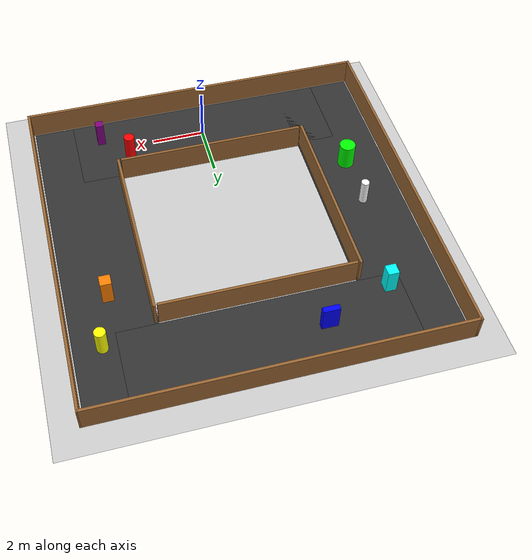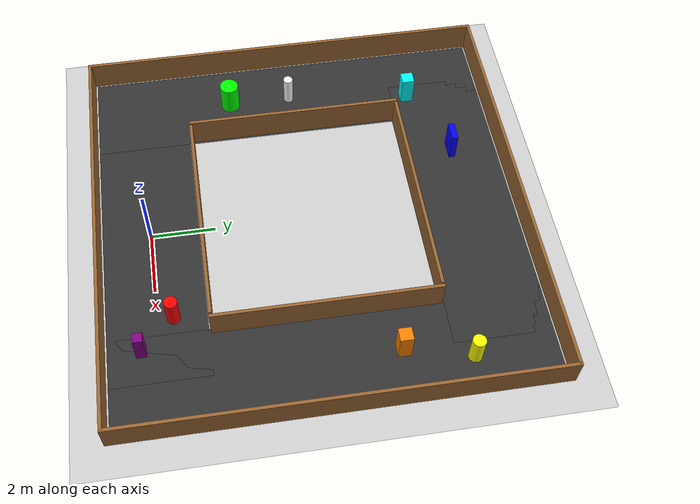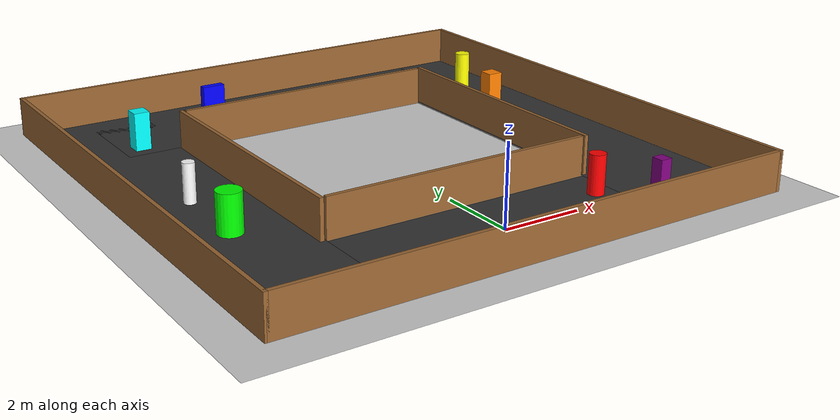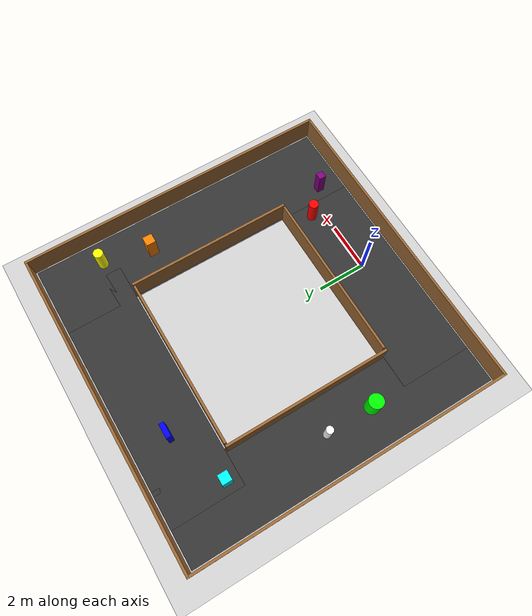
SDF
<?xml version="1.0" ?>
<sdf version="1.8">
  <world name="road_with_obstacles">
    <physics name="1ms" type="ignored">
      <max_step_size>0.001</max_step_size>
      <real_time_factor>1.0</real_time_factor>
    </physics>
    <plugin
      filename="gz-sim-physics-system"
      name="gz::sim::systems::Physics">
    </plugin>
    <plugin
      filename="gz-sim-user-commands-system"
      name="gz::sim::systems::UserCommands">
    </plugin>
    <plugin
      filename="gz-sim-scene-broadcaster-system"
      name="gz::sim::systems::SceneBroadcaster">
    </plugin>
    <plugin
      filename="gz-sim-sensors-system"
      name="gz::sim::systems::Sensors">
      <render_engine>ogre2</render_engine>
    </plugin>

    <light type="directional" name="sun">
      <cast_shadows>true</cast_shadows>
      <pose>0 0 10 0 0 0</pose>
      <diffuse>0.8 0.8 0.8 1</diffuse>
      <specular>0.2 0.2 0.2 1</specular>
      <attenuation>
        <range>1000</range>
        <constant>0.9</constant>
        <linear>0.01</linear>
        <quadratic>0.001</quadratic>
      </attenuation>
      <direction>-0.5 0.1 -0.9</direction>
    </light>

    <model name="ground_plane">
      <static>true</static>
      <link name="link">
        <collision name="collision">
          <geometry>
            <plane>
              <normal>0 0 1</normal>
              <size>100 100</size>
            </plane>
          </geometry>
        </collision>
        <visual name="visual">
          <geometry>
            <plane>
              <normal>0 0 1</normal>
              <size>100 100</size>
            </plane>
          </geometry>
          <material>
            <ambient>0.8 0.8 0.8 1</ambient>
            <diffuse>0.8 0.8 0.8 1</diffuse>
            <specular>0.8 0.8 0.8 1</specular>
          </material>
        </visual>
      </link>
    </model>

    <!-- ROADS (Width 3m) -->
    <!-- Bottom Straight Segment -->
    <model name="road_bottom">
      <static>true</static>
      <!-- Center (0,0), Length 10 -->
      <pose>0 0 0.01 0 0 0</pose>
      <link name="link">
        <visual name="visual">
          <geometry>
            <box>
              <size>10 3 0.02</size>
            </box>
          </geometry>
          <material>
            <ambient>0.2 0.2 0.2 1</ambient>
            <diffuse>0.2 0.2 0.2 1</diffuse>
          </material>
        </visual>
        <collision name="collision">
          <geometry>
            <box>
              <size>10 3 0.02</size>
            </box>
          </geometry>
        </collision>
      </link>
    </model>

    <!-- Top Straight Segment -->
    <model name="road_top">
      <static>true</static>
       <!-- Center (0,10), Length 10 -->
      <pose>0 10 0.01 0 0 0</pose>
      <link name="link">
        <visual name="visual">
          <geometry>
            <box>
              <size>10 3 0.02</size>
            </box>
          </geometry>
          <material>
            <ambient>0.2 0.2 0.2 1</ambient>
            <diffuse>0.2 0.2 0.2 1</diffuse>
          </material>
        </visual>
        <collision name="collision">
          <geometry>
            <box>
              <size>10 3 0.02</size>
            </box>
          </geometry>
        </collision>
      </link>
    </model>

    <!-- Left Straight Segment -->
    <model name="road_left">
      <static>true</static>
      <!-- Center (-5, 5), Length 13 (to overlap 3m width + margin) -->
      <pose>-5 5 0.01 0 0 0</pose>
      <link name="link">
        <visual name="visual">
          <geometry>
            <box>
              <size>3 13 0.02</size>
            </box>
          </geometry>
          <material>
            <ambient>0.2 0.2 0.2 1</ambient>
            <diffuse>0.2 0.2 0.2 1</diffuse>
          </material>
        </visual>
        <collision name="collision">
          <geometry>
            <box>
              <size>3 13 0.02</size>
            </box>
          </geometry>
        </collision>
      </link>
    </model>

    <!-- Right Straight Segment -->
    <model name="road_right">
      <static>true</static>
       <!-- Center (5, 5), Length 13 -->
      <pose>5 5 0.01 0 0 0</pose>
      <link name="link">
        <visual name="visual">
          <geometry>
            <box>
              <size>3 13 0.02</size>
            </box>
          </geometry>
          <material>
            <ambient>0.2 0.2 0.2 1</ambient>
            <diffuse>0.2 0.2 0.2 1</diffuse>
          </material>
        </visual>
        <collision name="collision">
          <geometry>
            <box>
              <size>3 13 0.02</size>
            </box>
          </geometry>
        </collision>
      </link>
    </model>

    <!-- FENCES -->
    <!-- Outer Fence Bottom -->
    <model name="fence_outer_bottom">
      <static>true</static>
      <pose>0 -1.6 0.5 0 0 0</pose>
      <link name="link">
        <visual name="visual">
          <geometry>
            <box>
              <size>13.2 0.1 1</size>
            </box>
          </geometry>
          <material>
            <ambient>0.6 0.4 0.2 1</ambient>
            <diffuse>0.6 0.4 0.2 1</diffuse>
          </material>
        </visual>
        <collision name="collision">
          <geometry>
            <box>
              <size>13.2 0.1 1</size>
            </box>
          </geometry>
        </collision>
      </link>
    </model>

    <!-- Outer Fence Top -->
    <model name="fence_outer_top">
      <static>true</static>
      <pose>0 11.6 0.5 0 0 0</pose>
      <link name="link">
        <visual name="visual">
          <geometry>
            <box>
              <size>13.2 0.1 1</size>
            </box>
          </geometry>
          <material>
            <ambient>0.6 0.4 0.2 1</ambient>
            <diffuse>0.6 0.4 0.2 1</diffuse>
          </material>
        </visual>
        <collision name="collision">
          <geometry>
            <box>
              <size>13.2 0.1 1</size>
            </box>
          </geometry>
        </collision>
      </link>
    </model>

    <!-- Outer Fence Left -->
    <model name="fence_outer_left">
      <static>true</static>
      <pose>-6.6 5 0.5 0 0 0</pose>
      <link name="link">
        <visual name="visual">
          <geometry>
            <box>
              <size>0.1 13.3 1</size>
            </box>
          </geometry>
          <material>
            <ambient>0.6 0.4 0.2 1</ambient>
            <diffuse>0.6 0.4 0.2 1</diffuse>
          </material>
        </visual>
        <collision name="collision">
          <geometry>
            <box>
              <size>0.1 13.3 1</size>
            </box>
          </geometry>
        </collision>
      </link>
    </model>

    <!-- Outer Fence Right -->
    <model name="fence_outer_right">
      <static>true</static>
      <pose>6.6 5 0.5 0 0 0</pose>
      <link name="link">
        <visual name="visual">
          <geometry>
            <box>
              <size>0.1 13.3 1</size>
            </box>
          </geometry>
          <material>
            <ambient>0.6 0.4 0.2 1</ambient>
            <diffuse>0.6 0.4 0.2 1</diffuse>
          </material>
        </visual>
        <collision name="collision">
          <geometry>
            <box>
              <size>0.1 13.3 1</size>
            </box>
          </geometry>
        </collision>
      </link>
    </model>

    <!-- Inner Fence Bottom -->
    <model name="fence_inner_bottom">
      <static>true</static>
      <pose>0 1.6 0.5 0 0 0</pose>
      <link name="link">
        <visual name="visual">
          <geometry>
            <box>
              <size>7 0.1 1</size>
            </box>
          </geometry>
          <material>
            <ambient>0.6 0.4 0.2 1</ambient>
            <diffuse>0.6 0.4 0.2 1</diffuse>
          </material>
        </visual>
        <collision name="collision">
          <geometry>
            <box>
              <size>7 0.1 1</size>
            </box>
          </geometry>
        </collision>
      </link>
    </model>

    <!-- Inner Fence Top -->
    <model name="fence_inner_top">
      <static>true</static>
      <pose>0 8.4 0.5 0 0 0</pose>
      <link name="link">
        <visual name="visual">
          <geometry>
            <box>
              <size>7 0.1 1</size>
            </box>
          </geometry>
          <material>
            <ambient>0.6 0.4 0.2 1</ambient>
            <diffuse>0.6 0.4 0.2 1</diffuse>
          </material>
        </visual>
        <collision name="collision">
          <geometry>
            <box>
              <size>7 0.1 1</size>
            </box>
          </geometry>
        </collision>
      </link>
    </model>

    <!-- Inner Fence Left -->
    <model name="fence_inner_left">
      <static>true</static>
      <pose>-3.6 5 0.5 0 0 0</pose>
      <link name="link">
        <visual name="visual">
          <geometry>
            <box>
              <size>0.1 6.9 1</size>
            </box>
          </geometry>
          <material>
            <ambient>0.6 0.4 0.2 1</ambient>
            <diffuse>0.6 0.4 0.2 1</diffuse>
          </material>
        </visual>
        <collision name="collision">
          <geometry>
            <box>
              <size>0.1 6.9 1</size>
            </box>
          </geometry>
        </collision>
      </link>
    </model>

    <!-- Inner Fence Right -->
    <model name="fence_inner_right">
      <static>true</static>
      <pose>3.6 5 0.5 0 0 0</pose>
      <link name="link">
        <visual name="visual">
          <geometry>
            <box>
              <size>0.1 6.9 1</size>
            </box>
          </geometry>
          <material>
            <ambient>0.6 0.4 0.2 1</ambient>
            <diffuse>0.6 0.4 0.2 1</diffuse>
          </material>
        </visual>
        <collision name="collision">
          <geometry>
            <box>
              <size>0.1 6.9 1</size>
            </box>
          </geometry>
        </collision>
      </link>
    </model>

     <!-- Obstacles (Scaled Positions) -->
    <model name="obstacle_1">
      <static>true</static>
      <pose>3 0.5 0.5 0 0 0</pose>
      <link name="link">
        <visual name="visual">
          <geometry>
            <cylinder>
              <radius>0.2</radius>
              <length>1</length>
            </cylinder>
          </geometry>
          <material>
            <ambient>1 0 0 1</ambient>
            <diffuse>1 0 0 1</diffuse>
          </material>
        </visual>
        <collision name="collision">
          <geometry>
            <cylinder>
              <radius>0.2</radius>
              <length>1</length>
            </cylinder>
          </geometry>
        </collision>
      </link>
    </model>

    <model name="obstacle_2">
      <static>true</static>
      <pose>5 7 0.5 0 0 0</pose>
      <link name="link">
        <visual name="visual">
          <geometry>
            <box>
              <size>0.4 0.4 1</size>
            </box>
          </geometry>
          <material>
            <ambient>1 0.5 0 1</ambient>
            <diffuse>1 0.5 0 1</diffuse>
          </material>
        </visual>
        <collision name="collision">
          <geometry>
            <box>
              <size>0.4 0.4 1</size>
            </box>
          </geometry>
        </collision>
      </link>
    </model>

    <model name="obstacle_3">
      <static>true</static>
      <pose>-2 10 0.5 0 0 0</pose>
      <link name="link">
        <visual name="visual">
          <geometry>
            <box>
              <size>0.6 0.2 1</size>
            </box>
          </geometry>
          <material>
            <ambient>0 0 1 1</ambient>
            <diffuse>0 0 1 1</diffuse>
          </material>
        </visual>
        <collision name="collision">
          <geometry>
            <box>
              <size>0.6 0.2 1</size>
            </box>
          </geometry>
        </collision>
      </link>
    </model>

    <model name="obstacle_4">
      <static>true</static>
      <pose>-5 3 0.5 0 0 0</pose>
      <link name="link">
        <visual name="visual">
          <geometry>
            <cylinder>
              <radius>0.3</radius>
              <length>1</length>
            </cylinder>
          </geometry>
          <material>
            <ambient>0 1 0 1</ambient>
            <diffuse>0 1 0 1</diffuse>
          </material>
        </visual>
        <collision name="collision">
          <geometry>
            <cylinder>
              <radius>0.3</radius>
              <length>1</length>
            </cylinder>
          </geometry>
        </collision>
      </link>
    </model>

    <model name="obstacle_5">
      <static>true</static>
      <pose>4 -0.5 0.5 0 0 0</pose>
      <link name="link">
        <visual name="visual">
          <geometry>
            <box>
              <size>0.3 0.3 1</size>
            </box>
          </geometry>
          <material>
            <ambient>0.5 0 0.5 1</ambient>
            <diffuse>0.5 0 0.5 1</diffuse>
          </material>
        </visual>
        <collision name="collision">
          <geometry>
            <box>
              <size>0.3 0.3 1</size>
            </box>
          </geometry>
        </collision>
      </link>
    </model>

    <model name="obstacle_6">
      <static>true</static>
      <pose>5.5 9 0.5 0 0 0</pose>
      <link name="link">
        <visual name="visual">
          <geometry>
            <cylinder>
              <radius>0.2</radius>
              <length>1</length>
            </cylinder>
          </geometry>
          <material>
            <ambient>1 1 0 1</ambient>
            <diffuse>1 1 0 1</diffuse>
          </material>
        </visual>
        <collision name="collision">
          <geometry>
            <cylinder>
              <radius>0.2</radius>
              <length>1</length>
            </cylinder>
          </geometry>
        </collision>
      </link>
    </model>

    <model name="obstacle_7">
      <static>true</static>
      <pose>-4.5 9 0.5 0 0 0</pose>
      <link name="link">
        <visual name="visual">
          <geometry>
            <box>
              <size>0.4 0.4 1</size>
            </box>
          </geometry>
          <material>
            <ambient>0 1 1 1</ambient>
            <diffuse>0 1 1 1</diffuse>
          </material>
        </visual>
        <collision name="collision">
          <geometry>
            <box>
              <size>0.4 0.4 1</size>
            </box>
          </geometry>
        </collision>
      </link>
    </model>

    <model name="obstacle_8">
      <static>true</static>
      <pose>-5 5 0.5 0 0 0</pose>
      <link name="link">
        <visual name="visual">
          <geometry>
            <cylinder>
              <radius>0.15</radius>
              <length>1</length>
            </cylinder>
          </geometry>
          <material>
            <ambient>1 1 1 1</ambient>
            <diffuse>1 1 1 1</diffuse>
          </material>
        </visual>
        <collision name="collision">
         <geometry>
            <cylinder>
              <radius>0.15</radius>
              <length>1</length>
            </cylinder>
          </geometry>
        </collision>
      </link>
    </model>

  </world>
</sdf>
